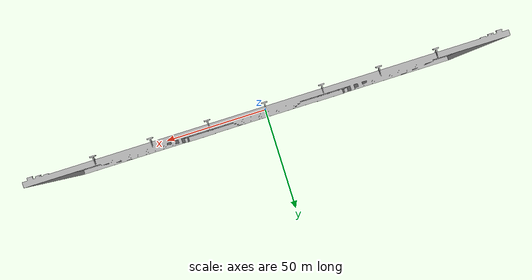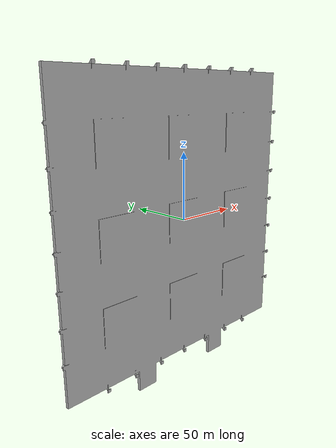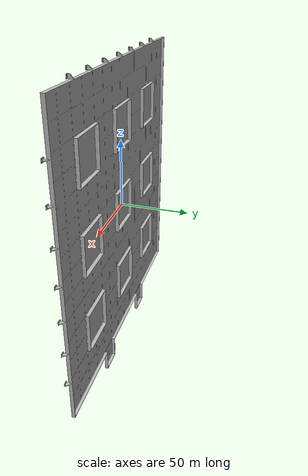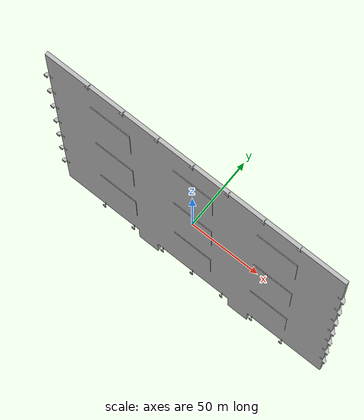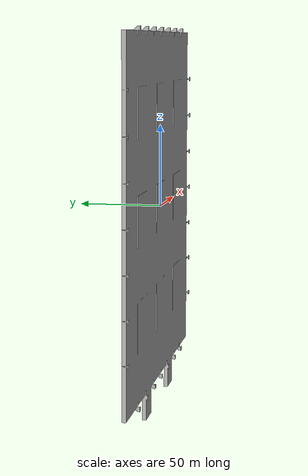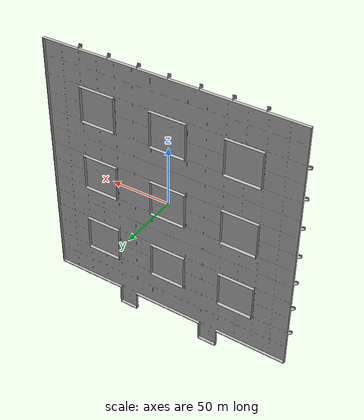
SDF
<?xml version='1.0'?>
<sdf version='1.4'>
  <model name="arena_2">
    <static>true</static>
    <pose>0 0 0 0 0 0 </pose>

    <link name="arena">
        <pose>0 0 0.02 0 0 0</pose>
    <collision name="collision">
        <geometry>
          <mesh>
              <uri>model://arena_2/meshes/arena.dae</uri>
          </mesh>
        </geometry>
      </collision>
    <visual name="visual">
        <geometry>
          <mesh>
                  <uri>model://arena_2/meshes/arena.dae</uri>
                  <lighting>1</lighting>
          </mesh>
        </geometry>
      </visual>
    </link>

  </model>
</sdf>
